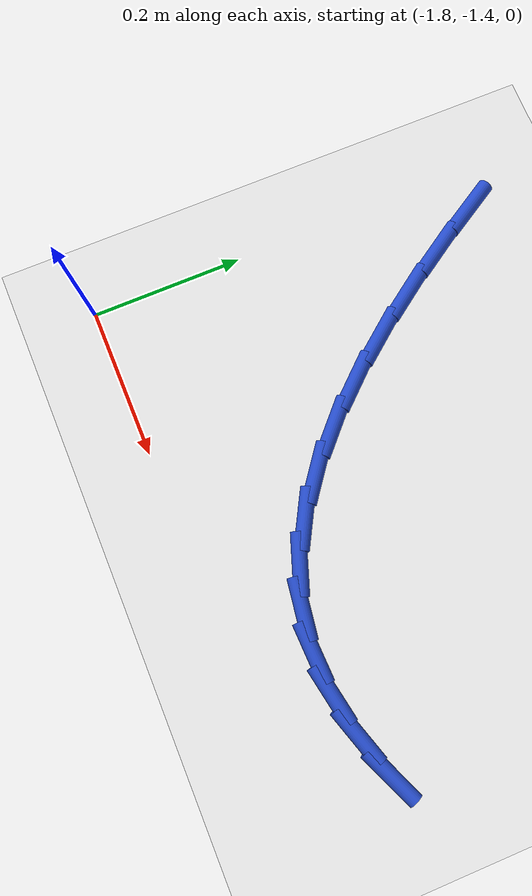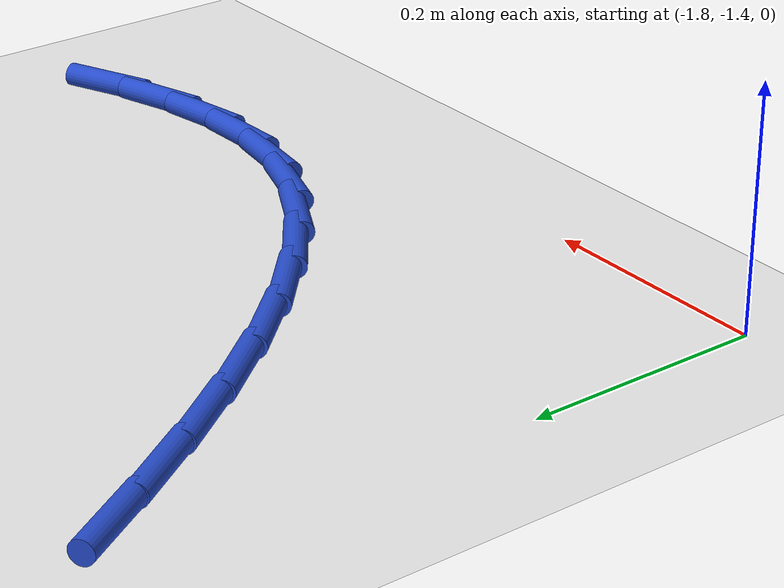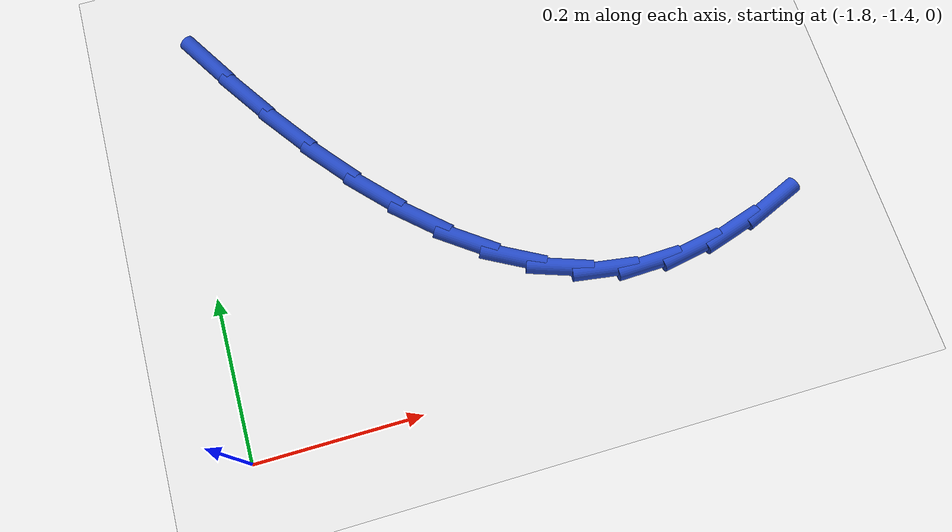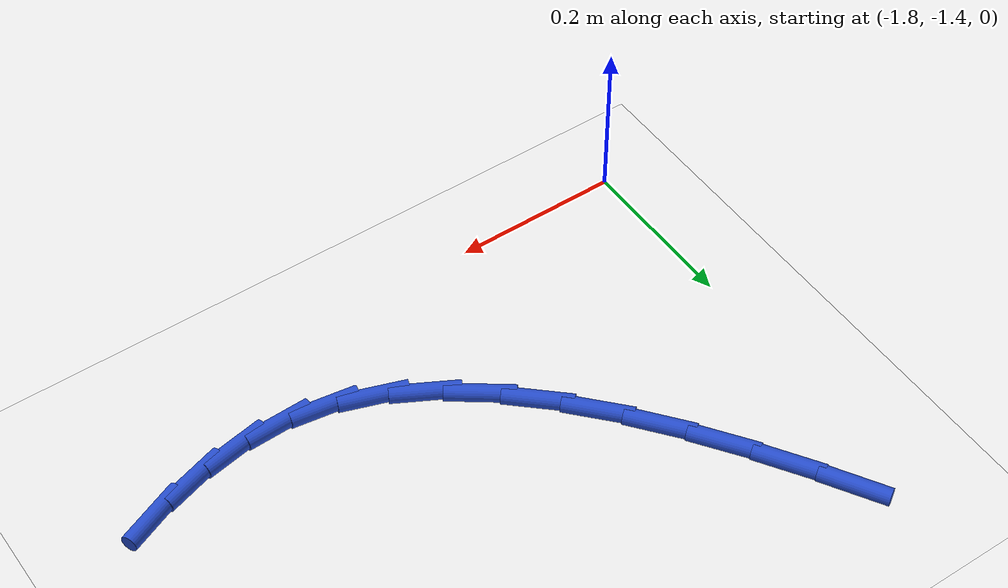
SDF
<sdf version="1.6">
 <world name="default">
  <model name="ground_plane">
   <static>1</static>
   <link name="link">
    <collision name="collision">
     <geometry><plane><normal>0 0 1</normal><size>100 100</size></plane></geometry>
     <surface><friction><ode><mu>100</mu><mu2>50</mu2></ode></friction></surface>
    </collision>
    <visual name="visual">
     <cast_shadows>0</cast_shadows>
     <geometry><plane><normal>0 0 1</normal><size>100 100</size></plane></geometry>
     <material>
      <script><uri>file://media/materials/scripts/gazebo.material</uri><name>Gazebo/WhiteGlow</name></script>
     </material>
    </visual>
   </link>
  </model>
  <model name="line">
   <link name="link_70">
    <pose>-1.7476793625081037 -0.8935183457024902 0.01 0 1.57 -1.0211003438894586</pose>
    <collision name="collision">
     <geometry><cylinder><radius>0.01</radius><length>0.08</length></cylinder></geometry>
    </collision>
    <visual name="visual">
     <material>
      <script><name>Gazebo/Blue</name><uri>file://media/materials/scripts/gazebo.material</uri></script>
     </material>
     <geometry><cylinder><radius>0.01</radius><length>0.08</length></cylinder></geometry>
    </visual>
   </link>
   <link name="link_71">
    <pose>-1.7100520128601746 -0.9549320038549494 0.01 0 1.57 -0.9880338551835344</pose>
    <collision name="collision">
     <geometry><cylinder><radius>0.01</radius><length>0.08</length></cylinder></geometry>
    </collision>
    <visual name="visual">
     <material>
      <script><name>Gazebo/Blue</name><uri>file://media/materials/scripts/gazebo.material</uri></script>
     </material>
     <geometry><cylinder><radius>0.01</radius><length>0.08</length></cylinder></geometry>
    </visual>
   </link>
   <link name="link_72">
    <pose>-1.670669412561418 -1.014681926730853 0.01 0 1.57 -0.9458711822302642</pose>
    <collision name="collision">
     <geometry><cylinder><radius>0.01</radius><length>0.08</length></cylinder></geometry>
    </collision>
    <visual name="visual">
     <material>
      <script><name>Gazebo/Blue</name><uri>file://media/materials/scripts/gazebo.material</uri></script>
     </material>
     <geometry><cylinder><radius>0.01</radius><length>0.08</length></cylinder></geometry>
    </visual>
   </link>
   <link name="link_73">
    <pose>-1.6295518654239576 -1.0716811246864624 0.01 0 1.57 -0.8925896197465992</pose>
    <collision name="collision">
     <geometry><cylinder><radius>0.01</radius><length>0.08</length></cylinder></geometry>
    </collision>
    <visual name="visual">
     <material>
      <script><name>Gazebo/Blue</name><uri>file://media/materials/scripts/gazebo.material</uri></script>
     </material>
     <geometry><cylinder><radius>0.01</radius><length>0.08</length></cylinder></geometry>
    </visual>
   </link>
   <link name="link_74">
    <pose>-1.5867196752599144 -1.1248426080780431 0.01 0 1.57 -0.8253738095998887</pose>
    <collision name="collision">
     <geometry><cylinder><radius>0.01</radius><length>0.08</length></cylinder></geometry>
    </collision>
    <visual name="visual">
     <material>
      <script><name>Gazebo/Blue</name><uri>file://media/materials/scripts/gazebo.material</uri></script>
     </material>
     <geometry><cylinder><radius>0.01</radius><length>0.08</length></cylinder></geometry>
    </visual>
   </link>
   <link name="link_75">
    <pose>-1.5421931458814113 -1.1730793872618568 0.01 0 1.57 -0.7404699757887844</pose>
    <collision name="collision">
     <geometry><cylinder><radius>0.01</radius><length>0.08</length></cylinder></geometry>
    </collision>
    <visual name="visual">
     <material>
      <script><name>Gazebo/Blue</name><uri>file://media/materials/scripts/gazebo.material</uri></script>
     </material>
     <geometry><cylinder><radius>0.01</radius><length>0.08</length></cylinder></geometry>
    </visual>
   </link>
   <link name="link_76">
    <pose>-1.4959925811005694 -1.215304472594168 0.01 0 1.57 -0.6332005332838847</pose>
    <collision name="collision">
     <geometry><cylinder><radius>0.01</radius><length>0.08</length></cylinder></geometry>
    </collision>
    <visual name="visual">
     <material>
      <script><name>Gazebo/Blue</name><uri>file://media/materials/scripts/gazebo.material</uri></script>
     </material>
     <geometry><cylinder><radius>0.01</radius><length>0.08</length></cylinder></geometry>
    </visual>
   </link>
   <link name="link_77">
    <pose>-1.448138284729512 -1.2504308744312393 0.01 0 1.57 -0.4985275695025103</pose>
    <collision name="collision">
     <geometry><cylinder><radius>0.01</radius><length>0.08</length></cylinder></geometry>
    </collision>
    <visual name="visual">
     <material>
      <script><name>Gazebo/Blue</name><uri>file://media/materials/scripts/gazebo.material</uri></script>
     </material>
     <geometry><cylinder><radius>0.01</radius><length>0.08</length></cylinder></geometry>
    </visual>
   </link>
   <link name="link_78">
    <pose>-1.3986505605803607 -1.2773716031293347 0.01 0 1.57 -0.33288270748058846</pose>
    <collision name="collision">
     <geometry><cylinder><radius>0.01</radius><length>0.08</length></cylinder></geometry>
    </collision>
    <visual name="visual">
     <material>
      <script><name>Gazebo/Blue</name><uri>file://media/materials/scripts/gazebo.material</uri></script>
     </material>
     <geometry><cylinder><radius>0.01</radius><length>0.08</length></cylinder></geometry>
    </visual>
   </link>
   <link name="link_79">
    <pose>-1.3475497124652378 -1.2950396690447166 0.01 0 1.57 -0.1441039760770311</pose>
    <collision name="collision">
     <geometry><cylinder><radius>0.01</radius><length>0.08</length></cylinder></geometry>
    </collision>
    <visual name="visual">
     <material>
      <script><name>Gazebo/Blue</name><uri>file://media/materials/scripts/gazebo.material</uri></script>
     </material>
     <geometry><cylinder><radius>0.01</radius><length>0.08</length></cylinder></geometry>
    </visual>
   </link>
   <link name="link_80">
    <pose>-1.2948831800383724 -1.3026820999488915 0.01 0 1.57 0.033079612729341824</pose>
    <collision name="collision">
     <geometry><cylinder><radius>0.01</radius><length>0.08</length></cylinder></geometry>
    </collision>
    <visual name="visual">
     <material>
      <script><name>Gazebo/Blue</name><uri>file://media/materials/scripts/gazebo.material</uri></script>
     </material>
     <geometry><cylinder><radius>0.01</radius><length>0.08</length></cylinder></geometry>
    </visual>
   </link>
   <link name="link_81">
    <pose>-1.2408078124877637 -1.300892654978018 0.01 0 1.57 0.18394101861147258</pose>
    <collision name="collision">
     <geometry><cylinder><radius>0.01</radius><length>0.08</length></cylinder></geometry>
    </collision>
    <visual name="visual">
     <material>
      <script><name>Gazebo/Blue</name><uri>file://media/materials/scripts/gazebo.material</uri></script>
     </material>
     <geometry><cylinder><radius>0.01</radius><length>0.08</length></cylinder></geometry>
    </visual>
   </link>
   <link name="link_82">
    <pose>-1.1855080296513623 -1.290604462770677 0.01 0 1.57 0.30688409944377815</pose>
    <collision name="collision">
     <geometry><cylinder><radius>0.01</radius><length>0.08</length></cylinder></geometry>
    </collision>
    <visual name="visual">
     <material>
      <script><name>Gazebo/Blue</name><uri>file://media/materials/scripts/gazebo.material</uri></script>
     </material>
     <geometry><cylinder><radius>0.01</radius><length>0.08</length></cylinder></geometry>
    </visual>
   </link>
   <link name="link_83">
    <pose>-1.1291682513676278 -1.2727506519717118 0.01 0 1.57 0.4045077712607705</pose>
    <collision name="collision">
     <geometry><cylinder><radius>0.01</radius><length>0.08</length></cylinder></geometry>
    </collision>
    <visual name="visual">
     <material>
      <script><name>Gazebo/Blue</name><uri>file://media/materials/scripts/gazebo.material</uri></script>
     </material>
     <geometry><cylinder><radius>0.01</radius><length>0.08</length></cylinder></geometry>
    </visual>
   </link>
  </model>
 </world>
</sdf>
